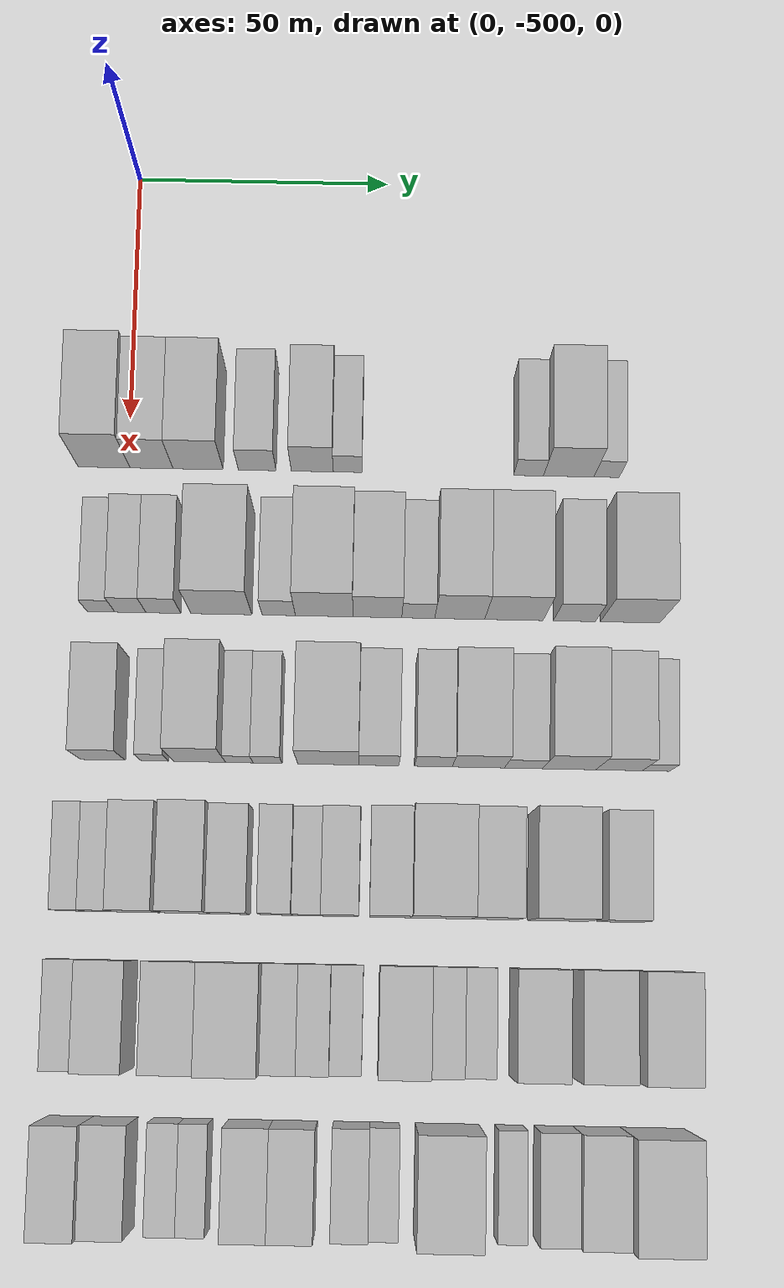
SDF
<sdf version="1.6">
 <world name="default">
  <model name="building_1">
   <static>1</static>
   <pose>50.0000 -504.8726 0 0.000000 0.000000 0.000000</pose>
   <link name="link">
    <pose>0 0 12.00 0 0 0</pose>
    <collision name="collision"><geometry><box><size>20.0000 10.2548 24.0000</size></box></geometry></collision>
    <visual name="visual">
     <cast_shadows>0</cast_shadows>
     <geometry><box><size>20.0000 10.2548 24.0000</size></box></geometry>
     <material>
      <script>
       <uri>model://HANNAS_wall/materials/scripts</uri>
       <uri>model://HANNAS_wall/materials/textures</uri>
       <name>vrc/HANNAS_wall</name>
      </script>
     </material>
    </visual>
   </link>
  </model>
  <model name="building_2">
   <static>1</static>
   <pose>50.0000 -495.4982 0 0.000000 0.000000 0.000000</pose>
   <link name="link">
    <pose>0 0 10.50 0 0 0</pose>
    <collision name="collision"><geometry><box><size>20.0000 8.4941 21.0000</size></box></geometry></collision>
    <visual name="visual">
     <cast_shadows>0</cast_shadows>
     <geometry><box><size>20.0000 8.4941 21.0000</size></box></geometry>
     <material>
      <script>
       <uri>model://HANNAS_wall/materials/scripts</uri>
       <uri>model://HANNAS_wall/materials/textures</uri>
       <name>vrc/HANNAS_wall</name>
      </script>
     </material>
    </visual>
   </link>
  </model>
  <model name="building_3">
   <static>1</static>
   <pose>50.0000 -486.2988 0 0.000000 0.000000 0.000000</pose>
   <link name="link">
    <pose>0 0 10.50 0 0 0</pose>
    <collision name="collision"><geometry><box><size>20.0000 9.9047 21.0000</size></box></geometry></collision>
    <visual name="visual">
     <cast_shadows>0</cast_shadows>
     <geometry><box><size>20.0000 9.9047 21.0000</size></box></geometry>
     <material>
      <script>
       <uri>model://HANNAS_wall/materials/scripts</uri>
       <uri>model://HANNAS_wall/materials/textures</uri>
       <name>vrc/HANNAS_wall</name>
      </script>
     </material>
    </visual>
   </link>
  </model>
  <model name="building_4">
   <static>1</static>
   <pose>50.0000 -474.6262 0 0.000000 0.000000 0.000000</pose>
   <link name="link">
    <pose>0 0 7.50 0 0 0</pose>
    <collision name="collision"><geometry><box><size>20.0000 7.4406 15.0000</size></box></geometry></collision>
    <visual name="visual">
     <cast_shadows>0</cast_shadows>
     <geometry><box><size>20.0000 7.4406 15.0000</size></box></geometry>
     <material>
      <script>
       <uri>model://HANNAS_wall/materials/scripts</uri>
       <uri>model://HANNAS_wall/materials/textures</uri>
       <name>vrc/HANNAS_wall</name>
      </script>
     </material>
    </visual>
   </link>
  </model>
  <model name="building_5">
   <static>1</static>
   <pose>50.0000 -463.7522 0 0.000000 0.000000 0.000000</pose>
   <link name="link">
    <pose>0 0 9.00 0 0 0</pose>
    <collision name="collision"><geometry><box><size>20.0000 8.3073 18.0000</size></box></geometry></collision>
    <visual name="visual">
     <cast_shadows>0</cast_shadows>
     <geometry><box><size>20.0000 8.3073 18.0000</size></box></geometry>
     <material>
      <script>
       <uri>model://HANNAS_wall/materials/scripts</uri>
       <uri>model://HANNAS_wall/materials/textures</uri>
       <name>vrc/HANNAS_wall</name>
      </script>
     </material>
    </visual>
   </link>
  </model>
  <model name="building_6">
   <static>1</static>
   <pose>50.0000 -456.7785 0 0.000000 0.000000 0.000000</pose>
   <link name="link">
    <pose>0 0 6.00 0 0 0</pose>
    <collision name="collision"><geometry><box><size>20.0000 5.6403 12.0000</size></box></geometry></collision>
    <visual name="visual">
     <cast_shadows>0</cast_shadows>
     <geometry><box><size>20.0000 5.6403 12.0000</size></box></geometry>
     <material>
      <script>
       <uri>model://HANNAS_wall/materials/scripts</uri>
       <uri>model://HANNAS_wall/materials/textures</uri>
       <name>vrc/HANNAS_wall</name>
      </script>
     </material>
    </visual>
   </link>
  </model>
  <model name="building_7">
   <static>1</static>
   <pose>50.0000 -421.0872 0 0.000000 0.000000 0.000000</pose>
   <link name="link">
    <pose>0 0 6.00 0 0 0</pose>
    <collision name="collision"><geometry><box><size>20.0000 5.9141 12.0000</size></box></geometry></collision>
    <visual name="visual">
     <cast_shadows>0</cast_shadows>
     <geometry><box><size>20.0000 5.9141 12.0000</size></box></geometry>
     <material>
      <script>
       <uri>model://HANNAS_wall/materials/scripts</uri>
       <uri>model://HANNAS_wall/materials/textures</uri>
       <name>vrc/HANNAS_wall</name>
      </script>
     </material>
    </visual>
   </link>
  </model>
  <model name="building_8">
   <static>1</static>
   <pose>50.0000 -413.1430 0 0.000000 0.000000 0.000000</pose>
   <link name="link">
    <pose>0 0 10.50 0 0 0</pose>
    <collision name="collision"><geometry><box><size>20.0000 9.9742 21.0000</size></box></geometry></collision>
    <visual name="visual">
     <cast_shadows>0</cast_shadows>
     <geometry><box><size>20.0000 9.9742 21.0000</size></box></geometry>
     <material>
      <script>
       <uri>model://HANNAS_wall/materials/scripts</uri>
       <uri>model://HANNAS_wall/materials/textures</uri>
       <name>vrc/HANNAS_wall</name>
      </script>
     </material>
    </visual>
   </link>
  </model>
  <model name="building_9">
   <static>1</static>
   <pose>50.0000 -405.6615 0 0.000000 0.000000 0.000000</pose>
   <link name="link">
    <pose>0 0 6.00 0 0 0</pose>
    <collision name="collision"><geometry><box><size>20.0000 4.9888 12.0000</size></box></geometry></collision>
    <visual name="visual">
     <cast_shadows>0</cast_shadows>
     <geometry><box><size>20.0000 4.9888 12.0000</size></box></geometry>
     <material>
      <script>
       <uri>model://HANNAS_wall/materials/scripts</uri>
       <uri>model://HANNAS_wall/materials/textures</uri>
       <name>vrc/HANNAS_wall</name>
      </script>
     </material>
    </visual>
   </link>
  </model>
  <model name="building_96">
   <static>1</static>
   <pose>79.0000 -504.2856 0 0.000000 0.000000 0.000000</pose>
   <link name="link">
    <pose>0 0 6.00 0 0 0</pose>
    <collision name="collision"><geometry><box><size>20.0000 5.4288 12.0000</size></box></geometry></collision>
    <visual name="visual">
     <cast_shadows>0</cast_shadows>
     <geometry><box><size>20.0000 5.4288 12.0000</size></box></geometry>
     <material>
      <script>
       <uri>model://HANNAS_wall/materials/scripts</uri>
       <uri>model://HANNAS_wall/materials/textures</uri>
       <name>vrc/HANNAS_wall</name>
      </script>
     </material>
    </visual>
   </link>
  </model>
  <model name="building_97">
   <static>1</static>
   <pose>79.0000 -498.5224 0 0.000000 0.000000 0.000000</pose>
   <link name="link">
    <pose>0 0 7.50 0 0 0</pose>
    <collision name="collision"><geometry><box><size>20.0000 6.0975 15.0000</size></box></geometry></collision>
    <visual name="visual">
     <cast_shadows>0</cast_shadows>
     <geometry><box><size>20.0000 6.0975 15.0000</size></box></geometry>
     <material>
      <script>
       <uri>model://HANNAS_wall/materials/scripts</uri>
       <uri>model://HANNAS_wall/materials/textures</uri>
       <name>vrc/HANNAS_wall</name>
      </script>
     </material>
    </visual>
   </link>
  </model>
  <model name="building_98">
   <static>1</static>
   <pose>79.0000 -492.0879 0 0.000000 0.000000 0.000000</pose>
   <link name="link">
    <pose>0 0 7.50 0 0 0</pose>
    <collision name="collision"><geometry><box><size>20.0000 6.7717 15.0000</size></box></geometry></collision>
    <visual name="visual">
     <cast_shadows>0</cast_shadows>
     <geometry><box><size>20.0000 6.7717 15.0000</size></box></geometry>
     <material>
      <script>
       <uri>model://HANNAS_wall/materials/scripts</uri>
       <uri>model://HANNAS_wall/materials/textures</uri>
       <name>vrc/HANNAS_wall</name>
      </script>
     </material>
    </visual>
   </link>
  </model>
  <model name="building_99">
   <static>1</static>
   <pose>79.0000 -480.7575 0 0.000000 0.000000 0.000000</pose>
   <link name="link">
    <pose>0 0 12.00 0 0 0</pose>
    <collision name="collision"><geometry><box><size>20.0000 11.8891 24.0000</size></box></geometry></collision>
    <visual name="visual">
     <cast_shadows>0</cast_shadows>
     <geometry><box><size>20.0000 11.8891 24.0000</size></box></geometry>
     <material>
      <script>
       <uri>model://HANNAS_wall/materials/scripts</uri>
       <uri>model://HANNAS_wall/materials/textures</uri>
       <name>vrc/HANNAS_wall</name>
      </script>
     </material>
    </visual>
   </link>
  </model>
  <model name="building_100">
   <static>1</static>
   <pose>79.0000 -469.5811 0 0.000000 0.000000 0.000000</pose>
   <link name="link">
    <pose>0 0 7.50 0 0 0</pose>
    <collision name="collision"><geometry><box><size>20.0000 6.4636 15.0000</size></box></geometry></collision>
    <visual name="visual">
     <cast_shadows>0</cast_shadows>
     <geometry><box><size>20.0000 6.4636 15.0000</size></box></geometry>
     <material>
      <script>
       <uri>model://HANNAS_wall/materials/scripts</uri>
       <uri>model://HANNAS_wall/materials/textures</uri>
       <name>vrc/HANNAS_wall</name>
      </script>
     </material>
    </visual>
   </link>
  </model>
  <model name="building_101">
   <static>1</static>
   <pose>79.0000 -460.7038 0 0.000000 0.000000 0.000000</pose>
   <link name="link">
    <pose>0 0 12.00 0 0 0</pose>
    <collision name="collision"><geometry><box><size>20.0000 11.2910 24.0000</size></box></geometry></collision>
    <visual name="visual">
     <cast_shadows>0</cast_shadows>
     <geometry><box><size>20.0000 11.2910 24.0000</size></box></geometry>
     <material>
      <script>
       <uri>model://HANNAS_wall/materials/scripts</uri>
       <uri>model://HANNAS_wall/materials/textures</uri>
       <name>vrc/HANNAS_wall</name>
      </script>
     </material>
    </visual>
   </link>
  </model>
  <model name="building_102">
   <static>1</static>
   <pose>79.0000 -450.3324 0 0.000000 0.000000 0.000000</pose>
   <link name="link">
    <pose>0 0 10.50 0 0 0</pose>
    <collision name="collision"><geometry><box><size>20.0000 9.4518 21.0000</size></box></geometry></collision>
    <visual name="visual">
     <cast_shadows>0</cast_shadows>
     <geometry><box><size>20.0000 9.4518 21.0000</size></box></geometry>
     <material>
      <script>
       <uri>model://HANNAS_wall/materials/scripts</uri>
       <uri>model://HANNAS_wall/materials/textures</uri>
       <name>vrc/HANNAS_wall</name>
      </script>
     </material>
    </visual>
   </link>
  </model>
  <model name="building_103">
   <static>1</static>
   <pose>79.0000 -442.3869 0 0.000000 0.000000 0.000000</pose>
   <link name="link">
    <pose>0 0 7.50 0 0 0</pose>
    <collision name="collision"><geometry><box><size>20.0000 6.4391 15.0000</size></box></geometry></collision>
    <visual name="visual">
     <cast_shadows>0</cast_shadows>
     <geometry><box><size>20.0000 6.4391 15.0000</size></box></geometry>
     <material>
      <script>
       <uri>model://HANNAS_wall/materials/scripts</uri>
       <uri>model://HANNAS_wall/materials/textures</uri>
       <name>vrc/HANNAS_wall</name>
      </script>
     </material>
    </visual>
   </link>
  </model>
  <model name="building_104">
   <static>1</static>
   <pose>79.0000 -434.2957 0 0.000000 0.000000 0.000000</pose>
   <link name="link">
    <pose>0 0 12.00 0 0 0</pose>
    <collision name="collision"><geometry><box><size>20.0000 9.7432 24.0000</size></box></geometry></collision>
    <visual name="visual">
     <cast_shadows>0</cast_shadows>
     <geometry><box><size>20.0000 9.7432 24.0000</size></box></geometry>
     <material>
      <script>
       <uri>model://HANNAS_wall/materials/scripts</uri>
       <uri>model://HANNAS_wall/materials/textures</uri>
       <name>vrc/HANNAS_wall</name>
      </script>
     </material>
    </visual>
   </link>
  </model>
  <model name="building_105">
   <static>1</static>
   <pose>79.0000 -423.7274 0 0.000000 0.000000 0.000000</pose>
   <link name="link">
    <pose>0 0 12.00 0 0 0</pose>
    <collision name="collision"><geometry><box><size>20.0000 11.3936 24.0000</size></box></geometry></collision>
    <visual name="visual">
     <cast_shadows>0</cast_shadows>
     <geometry><box><size>20.0000 11.3936 24.0000</size></box></geometry>
     <material>
      <script>
       <uri>model://HANNAS_wall/materials/scripts</uri>
       <uri>model://HANNAS_wall/materials/textures</uri>
       <name>vrc/HANNAS_wall</name>
      </script>
     </material>
    </visual>
   </link>
  </model>
  <model name="building_106">
   <static>1</static>
   <pose>79.0000 -411.9293 0 0.000000 0.000000 0.000000</pose>
   <link name="link">
    <pose>0 0 9.00 0 0 0</pose>
    <collision name="collision"><geometry><box><size>20.0000 8.2027 18.0000</size></box></geometry></collision>
    <visual name="visual">
     <cast_shadows>0</cast_shadows>
     <geometry><box><size>20.0000 8.2027 18.0000</size></box></geometry>
     <material>
      <script>
       <uri>model://HANNAS_wall/materials/scripts</uri>
       <uri>model://HANNAS_wall/materials/textures</uri>
       <name>vrc/HANNAS_wall</name>
      </script>
     </material>
    </visual>
   </link>
  </model>
  <model name="building_107">
   <static>1</static>
   <pose>79.0000 -401.0290 0 0.000000 0.000000 0.000000</pose>
   <link name="link">
    <pose>0 0 12.00 0 0 0</pose>
    <collision name="collision"><geometry><box><size>20.0000 11.5978 24.0000</size></box></geometry></collision>
    <visual name="visual">
     <cast_shadows>0</cast_shadows>
     <geometry><box><size>20.0000 11.5978 24.0000</size></box></geometry>
     <material>
      <script>
       <uri>model://HANNAS_wall/materials/scripts</uri>
       <uri>model://HANNAS_wall/materials/textures</uri>
       <name>vrc/HANNAS_wall</name>
      </script>
     </material>
    </visual>
   </link>
  </model>
  <model name="building_212">
   <static>1</static>
   <pose>108.0000 -502.6746 0 0.000000 0.000000 0.000000</pose>
   <link name="link">
    <pose>0 0 9.00 0 0 0</pose>
    <collision name="collision"><geometry><box><size>20.0000 8.6509 18.0000</size></box></geometry></collision>
    <visual name="visual">
     <cast_shadows>0</cast_shadows>
     <geometry><box><size>20.0000 8.6509 18.0000</size></box></geometry>
     <material>
      <script>
       <uri>model://HANNAS_wall/materials/scripts</uri>
       <uri>model://HANNAS_wall/materials/textures</uri>
       <name>vrc/HANNAS_wall</name>
      </script>
     </material>
    </visual>
   </link>
  </model>
  <model name="building_213">
   <static>1</static>
   <pose>108.0000 -492.6937 0 0.000000 0.000000 0.000000</pose>
   <link name="link">
    <pose>0 0 6.00 0 0 0</pose>
    <collision name="collision"><geometry><box><size>20.0000 5.3109 12.0000</size></box></geometry></collision>
    <visual name="visual">
     <cast_shadows>0</cast_shadows>
     <geometry><box><size>20.0000 5.3109 12.0000</size></box></geometry>
     <material>
      <script>
       <uri>model://HANNAS_wall/materials/scripts</uri>
       <uri>model://HANNAS_wall/materials/textures</uri>
       <name>vrc/HANNAS_wall</name>
      </script>
     </material>
    </visual>
   </link>
  </model>
  <model name="building_214">
   <static>1</static>
   <pose>108.0000 -484.0198 0 0.000000 0.000000 0.000000</pose>
   <link name="link">
    <pose>0 0 12.00 0 0 0</pose>
    <collision name="collision"><geometry><box><size>20.0000 10.0369 24.0000</size></box></geometry></collision>
    <visual name="visual">
     <cast_shadows>0</cast_shadows>
     <geometry><box><size>20.0000 10.0369 24.0000</size></box></geometry>
     <material>
      <script>
       <uri>model://HANNAS_wall/materials/scripts</uri>
       <uri>model://HANNAS_wall/materials/textures</uri>
       <name>vrc/HANNAS_wall</name>
      </script>
     </material>
    </visual>
   </link>
  </model>
  <model name="building_215">
   <static>1</static>
   <pose>108.0000 -476.3564 0 0.000000 0.000000 0.000000</pose>
   <link name="link">
    <pose>0 0 6.00 0 0 0</pose>
    <collision name="collision"><geometry><box><size>20.0000 5.2899 12.0000</size></box></geometry></collision>
    <visual name="visual">
     <cast_shadows>0</cast_shadows>
     <geometry><box><size>20.0000 5.2899 12.0000</size></box></geometry>
     <material>
      <script>
       <uri>model://HANNAS_wall/materials/scripts</uri>
       <uri>model://HANNAS_wall/materials/textures</uri>
       <name>vrc/HANNAS_wall</name>
      </script>
     </material>
    </visual>
   </link>
  </model>
  <model name="building_216">
   <static>1</static>
   <pose>108.0000 -470.9179 0 0.000000 0.000000 0.000000</pose>
   <link name="link">
    <pose>0 0 6.00 0 0 0</pose>
    <collision name="collision"><geometry><box><size>20.0000 5.5871 12.0000</size></box></geometry></collision>
    <visual name="visual">
     <cast_shadows>0</cast_shadows>
     <geometry><box><size>20.0000 5.5871 12.0000</size></box></geometry>
     <material>
      <script>
       <uri>model://HANNAS_wall/materials/scripts</uri>
       <uri>model://HANNAS_wall/materials/textures</uri>
       <name>vrc/HANNAS_wall</name>
      </script>
     </material>
    </visual>
   </link>
  </model>
  <model name="building_217">
   <static>1</static>
   <pose>108.0000 -459.2125 0 0.000000 0.000000 0.000000</pose>
   <link name="link">
    <pose>0 0 12.00 0 0 0</pose>
    <collision name="collision"><geometry><box><size>20.0000 11.8238 24.0000</size></box></geometry></collision>
    <visual name="visual">
     <cast_shadows>0</cast_shadows>
     <geometry><box><size>20.0000 11.8238 24.0000</size></box></geometry>
     <material>
      <script>
       <uri>model://HANNAS_wall/materials/scripts</uri>
       <uri>model://HANNAS_wall/materials/textures</uri>
       <name>vrc/HANNAS_wall</name>
      </script>
     </material>
    </visual>
   </link>
  </model>
  <model name="building_218">
   <static>1</static>
   <pose>108.0000 -449.4734 0 0.000000 0.000000 0.000000</pose>
   <link name="link">
    <pose>0 0 9.00 0 0 0</pose>
    <collision name="collision"><geometry><box><size>20.0000 7.6546 18.0000</size></box></geometry></collision>
    <visual name="visual">
     <cast_shadows>0</cast_shadows>
     <geometry><box><size>20.0000 7.6546 18.0000</size></box></geometry>
     <material>
      <script>
       <uri>model://HANNAS_wall/materials/scripts</uri>
       <uri>model://HANNAS_wall/materials/textures</uri>
       <name>vrc/HANNAS_wall</name>
      </script>
     </material>
    </visual>
   </link>
  </model>
  <model name="building_219">
   <static>1</static>
   <pose>108.0000 -439.0254 0 0.000000 0.000000 0.000000</pose>
   <link name="link">
    <pose>0 0 9.00 0 0 0</pose>
    <collision name="collision"><geometry><box><size>20.0000 7.2413 18.0000</size></box></geometry></collision>
    <visual name="visual">
     <cast_shadows>0</cast_shadows>
     <geometry><box><size>20.0000 7.2413 18.0000</size></box></geometry>
     <material>
      <script>
       <uri>model://HANNAS_wall/materials/scripts</uri>
       <uri>model://HANNAS_wall/materials/textures</uri>
       <name>vrc/HANNAS_wall</name>
      </script>
     </material>
    </visual>
   </link>
  </model>
  <model name="building_220">
   <static>1</static>
   <pose>108.0000 -430.3563 0 0.000000 0.000000 0.000000</pose>
   <link name="link">
    <pose>0 0 10.50 0 0 0</pose>
    <collision name="collision"><geometry><box><size>20.0000 10.0970 21.0000</size></box></geometry></collision>
    <visual name="visual">
     <cast_shadows>0</cast_shadows>
     <geometry><box><size>20.0000 10.0970 21.0000</size></box></geometry>
     <material>
      <script>
       <uri>model://HANNAS_wall/materials/scripts</uri>
       <uri>model://HANNAS_wall/materials/textures</uri>
       <name>vrc/HANNAS_wall</name>
      </script>
     </material>
    </visual>
   </link>
  </model>
  <model name="building_221">
   <static>1</static>
   <pose>108.0000 -421.6366 0 0.000000 0.000000 0.000000</pose>
   <link name="link">
    <pose>0 0 7.50 0 0 0</pose>
    <collision name="collision"><geometry><box><size>20.0000 7.3423 15.0000</size></box></geometry></collision>
    <visual name="visual">
     <cast_shadows>0</cast_shadows>
     <geometry><box><size>20.0000 7.3423 15.0000</size></box></geometry>
     <material>
      <script>
       <uri>model://HANNAS_wall/materials/scripts</uri>
       <uri>model://HANNAS_wall/materials/textures</uri>
       <name>vrc/HANNAS_wall</name>
      </script>
     </material>
    </visual>
   </link>
  </model>
  <model name="building_222">
   <static>1</static>
   <pose>108.0000 -412.8194 0 0.000000 0.000000 0.000000</pose>
   <link name="link">
    <pose>0 0 12.00 0 0 0</pose>
    <collision name="collision"><geometry><box><size>20.0000 10.2921 24.0000</size></box></geometry></collision>
    <visual name="visual">
     <cast_shadows>0</cast_shadows>
     <geometry><box><size>20.0000 10.2921 24.0000</size></box></geometry>
     <material>
      <script>
       <uri>model://HANNAS_wall/materials/scripts</uri>
       <uri>model://HANNAS_wall/materials/textures</uri>
       <name>vrc/HANNAS_wall</name>
      </script>
     </material>
    </visual>
   </link>
  </model>
  <model name="building_223">
   <static>1</static>
   <pose>108.0000 -403.1983 0 0.000000 0.000000 0.000000</pose>
   <link name="link">
    <pose>0 0 10.50 0 0 0</pose>
    <collision name="collision"><geometry><box><size>20.0000 8.9501 21.0000</size></box></geometry></collision>
    <visual name="visual">
     <cast_shadows>0</cast_shadows>
     <geometry><box><size>20.0000 8.9501 21.0000</size></box></geometry>
     <material>
      <script>
       <uri>model://HANNAS_wall/materials/scripts</uri>
       <uri>model://HANNAS_wall/materials/textures</uri>
       <name>vrc/HANNAS_wall</name>
      </script>
     </material>
    </visual>
   </link>
  </model>
  <model name="building_224">
   <static>1</static>
   <pose>108.0000 -396.1077 0 0.000000 0.000000 0.000000</pose>
   <link name="link">
    <pose>0 0 6.00 0 0 0</pose>
    <collision name="collision"><geometry><box><size>20.0000 5.2312 12.0000</size></box></geometry></collision>
    <visual name="visual">
     <cast_shadows>0</cast_shadows>
     <geometry><box><size>20.0000 5.2312 12.0000</size></box></geometry>
     <material>
      <script>
       <uri>model://HANNAS_wall/materials/scripts</uri>
       <uri>model://HANNAS_wall/materials/textures</uri>
       <name>vrc/HANNAS_wall</name>
      </script>
     </material>
    </visual>
   </link>
  </model>
  <model name="building_322">
   <static>1</static>
   <pose>137.0000 -507.4300 0 0.000000 0.000000 0.000000</pose>
   <link name="link">
    <pose>0 0 6.00 0 0 0</pose>
    <collision name="collision"><geometry><box><size>20.0000 5.1401 12.0000</size></box></geometry></collision>
    <visual name="visual">
     <cast_shadows>0</cast_shadows>
     <geometry><box><size>20.0000 5.1401 12.0000</size></box></geometry>
     <material>
      <script>
       <uri>model://HANNAS_wall/materials/scripts</uri>
       <uri>model://HANNAS_wall/materials/textures</uri>
       <name>vrc/HANNAS_wall</name>
      </script>
     </material>
    </visual>
   </link>
  </model>
  <model name="building_323">
   <static>1</static>
   <pose>137.0000 -501.9256 0 0.000000 0.000000 0.000000</pose>
   <link name="link">
    <pose>0 0 6.00 0 0 0</pose>
    <collision name="collision"><geometry><box><size>20.0000 5.8686 12.0000</size></box></geometry></collision>
    <visual name="visual">
     <cast_shadows>0</cast_shadows>
     <geometry><box><size>20.0000 5.8686 12.0000</size></box></geometry>
     <material>
      <script>
       <uri>model://HANNAS_wall/materials/scripts</uri>
       <uri>model://HANNAS_wall/materials/textures</uri>
       <name>vrc/HANNAS_wall</name>
      </script>
     </material>
    </visual>
   </link>
  </model>
  <model name="building_324">
   <static>1</static>
   <pose>137.0000 -494.7883 0 0.000000 0.000000 0.000000</pose>
   <link name="link">
    <pose>0 0 9.00 0 0 0</pose>
    <collision name="collision"><geometry><box><size>20.0000 8.4061 18.0000</size></box></geometry></collision>
    <visual name="visual">
     <cast_shadows>0</cast_shadows>
     <geometry><box><size>20.0000 8.4061 18.0000</size></box></geometry>
     <material>
      <script>
       <uri>model://HANNAS_wall/materials/scripts</uri>
       <uri>model://HANNAS_wall/materials/textures</uri>
       <name>vrc/HANNAS_wall</name>
      </script>
     </material>
    </visual>
   </link>
  </model>
  <model name="building_325">
   <static>1</static>
   <pose>137.0000 -485.2463 0 0.000000 0.000000 0.000000</pose>
   <link name="link">
    <pose>0 0 10.50 0 0 0</pose>
    <collision name="collision"><geometry><box><size>20.0000 8.6780 21.0000</size></box></geometry></collision>
    <visual name="visual">
     <cast_shadows>0</cast_shadows>
     <geometry><box><size>20.0000 8.6780 21.0000</size></box></geometry>
     <material>
      <script>
       <uri>model://HANNAS_wall/materials/scripts</uri>
       <uri>model://HANNAS_wall/materials/textures</uri>
       <name>vrc/HANNAS_wall</name>
      </script>
     </material>
    </visual>
   </link>
  </model>
  <model name="building_326">
   <static>1</static>
   <pose>137.0000 -477.1633 0 0.000000 0.000000 0.000000</pose>
   <link name="link">
    <pose>0 0 7.50 0 0 0</pose>
    <collision name="collision"><geometry><box><size>20.0000 7.4880 15.0000</size></box></geometry></collision>
    <visual name="visual">
     <cast_shadows>0</cast_shadows>
     <geometry><box><size>20.0000 7.4880 15.0000</size></box></geometry>
     <material>
      <script>
       <uri>model://HANNAS_wall/materials/scripts</uri>
       <uri>model://HANNAS_wall/materials/textures</uri>
       <name>vrc/HANNAS_wall</name>
      </script>
     </material>
    </visual>
   </link>
  </model>
  <model name="building_327">
   <static>1</static>
   <pose>137.0000 -468.3188 0 0.000000 0.000000 0.000000</pose>
   <link name="link">
    <pose>0 0 7.50 0 0 0</pose>
    <collision name="collision"><geometry><box><size>20.0000 6.2010 15.0000</size></box></geometry></collision>
    <visual name="visual">
     <cast_shadows>0</cast_shadows>
     <geometry><box><size>20.0000 6.2010 15.0000</size></box></geometry>
     <material>
      <script>
       <uri>model://HANNAS_wall/materials/scripts</uri>
       <uri>model://HANNAS_wall/materials/textures</uri>
       <name>vrc/HANNAS_wall</name>
      </script>
     </material>
    </visual>
   </link>
  </model>
  <model name="building_328">
   <static>1</static>
   <pose>137.0000 -462.4796 0 0.000000 0.000000 0.000000</pose>
   <link name="link">
    <pose>0 0 6.00 0 0 0</pose>
    <collision name="collision"><geometry><box><size>20.0000 5.4775 12.0000</size></box></geometry></collision>
    <visual name="visual">
     <cast_shadows>0</cast_shadows>
     <geometry><box><size>20.0000 5.4775 12.0000</size></box></geometry>
     <material>
      <script>
       <uri>model://HANNAS_wall/materials/scripts</uri>
       <uri>model://HANNAS_wall/materials/textures</uri>
       <name>vrc/HANNAS_wall</name>
      </script>
     </material>
    </visual>
   </link>
  </model>
  <model name="building_329">
   <static>1</static>
   <pose>137.0000 -456.2377 0 0.000000 0.000000 0.000000</pose>
   <link name="link">
    <pose>0 0 7.50 0 0 0</pose>
    <collision name="collision"><geometry><box><size>20.0000 7.0062 15.0000</size></box></geometry></collision>
    <visual name="visual">
     <cast_shadows>0</cast_shadows>
     <geometry><box><size>20.0000 7.0062 15.0000</size></box></geometry>
     <material>
      <script>
       <uri>model://HANNAS_wall/materials/scripts</uri>
       <uri>model://HANNAS_wall/materials/textures</uri>
       <name>vrc/HANNAS_wall</name>
      </script>
     </material>
    </visual>
   </link>
  </model>
  <model name="building_330">
   <static>1</static>
   <pose>137.0000 -446.8250 0 0.000000 0.000000 0.000000</pose>
   <link name="link">
    <pose>0 0 9.00 0 0 0</pose>
    <collision name="collision"><geometry><box><size>20.0000 7.8192 18.0000</size></box></geometry></collision>
    <visual name="visual">
     <cast_shadows>0</cast_shadows>
     <geometry><box><size>20.0000 7.8192 18.0000</size></box></geometry>
     <material>
      <script>
       <uri>model://HANNAS_wall/materials/scripts</uri>
       <uri>model://HANNAS_wall/materials/textures</uri>
       <name>vrc/HANNAS_wall</name>
      </script>
     </material>
    </visual>
   </link>
  </model>
  <model name="building_331">
   <static>1</static>
   <pose>137.0000 -437.2051 0 0.000000 0.000000 0.000000</pose>
   <link name="link">
    <pose>0 0 12.00 0 0 0</pose>
    <collision name="collision"><geometry><box><size>20.0000 11.4207 24.0000</size></box></geometry></collision>
    <visual name="visual">
     <cast_shadows>0</cast_shadows>
     <geometry><box><size>20.0000 11.4207 24.0000</size></box></geometry>
     <material>
      <script>
       <uri>model://HANNAS_wall/materials/scripts</uri>
       <uri>model://HANNAS_wall/materials/textures</uri>
       <name>vrc/HANNAS_wall</name>
      </script>
     </material>
    </visual>
   </link>
  </model>
  <model name="building_332">
   <static>1</static>
   <pose>137.0000 -427.0949 0 0.000000 0.000000 0.000000</pose>
   <link name="link">
    <pose>0 0 10.50 0 0 0</pose>
    <collision name="collision"><geometry><box><size>20.0000 8.7996 21.0000</size></box></geometry></collision>
    <visual name="visual">
     <cast_shadows>0</cast_shadows>
     <geometry><box><size>20.0000 8.7996 21.0000</size></box></geometry>
     <material>
      <script>
       <uri>model://HANNAS_wall/materials/scripts</uri>
       <uri>model://HANNAS_wall/materials/textures</uri>
       <name>vrc/HANNAS_wall</name>
      </script>
     </material>
    </visual>
   </link>
  </model>
  <model name="building_333">
   <static>1</static>
   <pose>137.0000 -415.0547 0 0.000000 0.000000 0.000000</pose>
   <link name="link">
    <pose>0 0 12.00 0 0 0</pose>
    <collision name="collision"><geometry><box><size>20.0000 11.2808 24.0000</size></box></geometry></collision>
    <visual name="visual">
     <cast_shadows>0</cast_shadows>
     <geometry><box><size>20.0000 11.2808 24.0000</size></box></geometry>
     <material>
      <script>
       <uri>model://HANNAS_wall/materials/scripts</uri>
       <uri>model://HANNAS_wall/materials/textures</uri>
       <name>vrc/HANNAS_wall</name>
      </script>
     </material>
    </visual>
   </link>
  </model>
  <model name="building_334">
   <static>1</static>
   <pose>137.0000 -403.3989 0 0.000000 0.000000 0.000000</pose>
   <link name="link">
    <pose>0 0 9.00 0 0 0</pose>
    <collision name="collision"><geometry><box><size>20.0000 8.0308 18.0000</size></box></geometry></collision>
    <visual name="visual">
     <cast_shadows>0</cast_shadows>
     <geometry><box><size>20.0000 8.0308 18.0000</size></box></geometry>
     <material>
      <script>
       <uri>model://HANNAS_wall/materials/scripts</uri>
       <uri>model://HANNAS_wall/materials/textures</uri>
       <name>vrc/HANNAS_wall</name>
      </script>
     </material>
    </visual>
   </link>
  </model>
  <model name="building_437">
   <static>1</static>
   <pose>166.0000 -506.7772 0 0.000000 0.000000 0.000000</pose>
   <link name="link">
    <pose>0 0 7.50 0 0 0</pose>
    <collision name="collision"><geometry><box><size>20.0000 6.4455 15.0000</size></box></geometry></collision>
    <visual name="visual">
     <cast_shadows>0</cast_shadows>
     <geometry><box><size>20.0000 6.4455 15.0000</size></box></geometry>
     <material>
      <script>
       <uri>model://HANNAS_wall/materials/scripts</uri>
       <uri>model://HANNAS_wall/materials/textures</uri>
       <name>vrc/HANNAS_wall</name>
      </script>
     </material>
    </visual>
   </link>
  </model>
  <model name="building_438">
   <static>1</static>
   <pose>166.0000 -499.0122 0 0.000000 0.000000 0.000000</pose>
   <link name="link">
    <pose>0 0 10.50 0 0 0</pose>
    <collision name="collision"><geometry><box><size>20.0000 9.0845 21.0000</size></box></geometry></collision>
    <visual name="visual">
     <cast_shadows>0</cast_shadows>
     <geometry><box><size>20.0000 9.0845 21.0000</size></box></geometry>
     <material>
      <script>
       <uri>model://HANNAS_wall/materials/scripts</uri>
       <uri>model://HANNAS_wall/materials/textures</uri>
       <name>vrc/HANNAS_wall</name>
      </script>
     </material>
    </visual>
   </link>
  </model>
  <model name="building_439">
   <static>1</static>
   <pose>166.0000 -486.4685 0 0.000000 0.000000 0.000000</pose>
   <link name="link">
    <pose>0 0 10.50 0 0 0</pose>
    <collision name="collision"><geometry><box><size>20.0000 10.0028 21.0000</size></box></geometry></collision>
    <visual name="visual">
     <cast_shadows>0</cast_shadows>
     <geometry><box><size>20.0000 10.0028 21.0000</size></box></geometry>
     <material>
      <script>
       <uri>model://HANNAS_wall/materials/scripts</uri>
       <uri>model://HANNAS_wall/materials/textures</uri>
       <name>vrc/HANNAS_wall</name>
      </script>
     </material>
    </visual>
   </link>
  </model>
  <model name="building_440">
   <static>1</static>
   <pose>166.0000 -475.8241 0 0.000000 0.000000 0.000000</pose>
   <link name="link">
    <pose>0 0 12.00 0 0 0</pose>
    <collision name="collision"><geometry><box><size>20.0000 11.2860 24.0000</size></box></geometry></collision>
    <visual name="visual">
     <cast_shadows>0</cast_shadows>
     <geometry><box><size>20.0000 11.2860 24.0000</size></box></geometry>
     <material>
      <script>
       <uri>model://HANNAS_wall/materials/scripts</uri>
       <uri>model://HANNAS_wall/materials/textures</uri>
       <name>vrc/HANNAS_wall</name>
      </script>
     </material>
    </visual>
   </link>
  </model>
  <model name="building_441">
   <static>1</static>
   <pose>166.0000 -466.8923 0 0.000000 0.000000 0.000000</pose>
   <link name="link">
    <pose>0 0 7.50 0 0 0</pose>
    <collision name="collision"><geometry><box><size>20.0000 6.5774 15.0000</size></box></geometry></collision>
    <visual name="visual">
     <cast_shadows>0</cast_shadows>
     <geometry><box><size>20.0000 6.5774 15.0000</size></box></geometry>
     <material>
      <script>
       <uri>model://HANNAS_wall/materials/scripts</uri>
       <uri>model://HANNAS_wall/materials/textures</uri>
       <name>vrc/HANNAS_wall</name>
      </script>
     </material>
    </visual>
   </link>
  </model>
  <model name="building_442">
   <static>1</static>
   <pose>166.0000 -460.5857 0 0.000000 0.000000 0.000000</pose>
   <link name="link">
    <pose>0 0 7.50 0 0 0</pose>
    <collision name="collision"><geometry><box><size>20.0000 6.0359 15.0000</size></box></geometry></collision>
    <visual name="visual">
     <cast_shadows>0</cast_shadows>
     <geometry><box><size>20.0000 6.0359 15.0000</size></box></geometry>
     <material>
      <script>
       <uri>model://HANNAS_wall/materials/scripts</uri>
       <uri>model://HANNAS_wall/materials/textures</uri>
       <name>vrc/HANNAS_wall</name>
      </script>
     </material>
    </visual>
   </link>
  </model>
  <model name="building_443">
   <static>1</static>
   <pose>166.0000 -454.6080 0 0.000000 0.000000 0.000000</pose>
   <link name="link">
    <pose>0 0 6.00 0 0 0</pose>
    <collision name="collision"><geometry><box><size>20.0000 5.9194 12.0000</size></box></geometry></collision>
    <visual name="visual">
     <cast_shadows>0</cast_shadows>
     <geometry><box><size>20.0000 5.9194 12.0000</size></box></geometry>
     <material>
      <script>
       <uri>model://HANNAS_wall/materials/scripts</uri>
       <uri>model://HANNAS_wall/materials/textures</uri>
       <name>vrc/HANNAS_wall</name>
      </script>
     </material>
    </visual>
   </link>
  </model>
  <model name="building_444">
   <static>1</static>
   <pose>166.0000 -443.8889 0 0.000000 0.000000 0.000000</pose>
   <link name="link">
    <pose>0 0 10.50 0 0 0</pose>
    <collision name="collision"><geometry><box><size>20.0000 9.5188 21.0000</size></box></geometry></collision>
    <visual name="visual">
     <cast_shadows>0</cast_shadows>
     <geometry><box><size>20.0000 9.5188 21.0000</size></box></geometry>
     <material>
      <script>
       <uri>model://HANNAS_wall/materials/scripts</uri>
       <uri>model://HANNAS_wall/materials/textures</uri>
       <name>vrc/HANNAS_wall</name>
      </script>
     </material>
    </visual>
   </link>
  </model>
  <model name="building_445">
   <static>1</static>
   <pose>166.0000 -436.0107 0 0.000000 0.000000 0.000000</pose>
   <link name="link">
    <pose>0 0 7.50 0 0 0</pose>
    <collision name="collision"><geometry><box><size>20.0000 6.2376 15.0000</size></box></geometry></collision>
    <visual name="visual">
     <cast_shadows>0</cast_shadows>
     <geometry><box><size>20.0000 6.2376 15.0000</size></box></geometry>
     <material>
      <script>
       <uri>model://HANNAS_wall/materials/scripts</uri>
       <uri>model://HANNAS_wall/materials/textures</uri>
       <name>vrc/HANNAS_wall</name>
      </script>
     </material>
    </visual>
   </link>
  </model>
  <model name="building_446">
   <static>1</static>
   <pose>166.0000 -429.9337 0 0.000000 0.000000 0.000000</pose>
   <link name="link">
    <pose>0 0 6.00 0 0 0</pose>
    <collision name="collision"><geometry><box><size>20.0000 5.9164 12.0000</size></box></geometry></collision>
    <visual name="visual">
     <cast_shadows>0</cast_shadows>
     <geometry><box><size>20.0000 5.9164 12.0000</size></box></geometry>
     <material>
      <script>
       <uri>model://HANNAS_wall/materials/scripts</uri>
       <uri>model://HANNAS_wall/materials/textures</uri>
       <name>vrc/HANNAS_wall</name>
      </script>
     </material>
    </visual>
   </link>
  </model>
  <model name="building_447">
   <static>1</static>
   <pose>166.0000 -419.1223 0 0.000000 0.000000 0.000000</pose>
   <link name="link">
    <pose>0 0 10.50 0 0 0</pose>
    <collision name="collision"><geometry><box><size>20.0000 9.7062 21.0000</size></box></geometry></collision>
    <visual name="visual">
     <cast_shadows>0</cast_shadows>
     <geometry><box><size>20.0000 9.7062 21.0000</size></box></geometry>
     <material>
      <script>
       <uri>model://HANNAS_wall/materials/scripts</uri>
       <uri>model://HANNAS_wall/materials/textures</uri>
       <name>vrc/HANNAS_wall</name>
      </script>
     </material>
    </visual>
   </link>
  </model>
  <model name="building_448">
   <static>1</static>
   <pose>166.0000 -407.3166 0 0.000000 0.000000 0.000000</pose>
   <link name="link">
    <pose>0 0 10.50 0 0 0</pose>
    <collision name="collision"><geometry><box><size>20.0000 9.9053 21.0000</size></box></geometry></collision>
    <visual name="visual">
     <cast_shadows>0</cast_shadows>
     <geometry><box><size>20.0000 9.9053 21.0000</size></box></geometry>
     <material>
      <script>
       <uri>model://HANNAS_wall/materials/scripts</uri>
       <uri>model://HANNAS_wall/materials/textures</uri>
       <name>vrc/HANNAS_wall</name>
      </script>
     </material>
    </visual>
   </link>
  </model>
  <model name="building_449">
   <static>1</static>
   <pose>166.0000 -396.3011 0 0.000000 0.000000 0.000000</pose>
   <link name="link">
    <pose>0 0 12.00 0 0 0</pose>
    <collision name="collision"><geometry><box><size>20.0000 10.1259 24.0000</size></box></geometry></collision>
    <visual name="visual">
     <cast_shadows>0</cast_shadows>
     <geometry><box><size>20.0000 10.1259 24.0000</size></box></geometry>
     <material>
      <script>
       <uri>model://HANNAS_wall/materials/scripts</uri>
       <uri>model://HANNAS_wall/materials/textures</uri>
       <name>vrc/HANNAS_wall</name>
      </script>
     </material>
    </visual>
   </link>
  </model>
  <model name="building_552">
   <static>1</static>
   <pose>195.0000 -505.7945 0 0.000000 0.000000 0.000000</pose>
   <link name="link">
    <pose>0 0 10.50 0 0 0</pose>
    <collision name="collision"><geometry><box><size>20.0000 8.4110 21.0000</size></box></geometry></collision>
    <visual name="visual">
     <cast_shadows>0</cast_shadows>
     <geometry><box><size>20.0000 8.4110 21.0000</size></box></geometry>
     <material>
      <script>
       <uri>model://HANNAS_wall/materials/scripts</uri>
       <uri>model://HANNAS_wall/materials/textures</uri>
       <name>vrc/HANNAS_wall</name>
      </script>
     </material>
    </visual>
   </link>
  </model>
  <model name="building_553">
   <static>1</static>
   <pose>195.0000 -497.4490 0 0.000000 0.000000 0.000000</pose>
   <link name="link">
    <pose>0 0 9.00 0 0 0</pose>
    <collision name="collision"><geometry><box><size>20.0000 8.2799 18.0000</size></box></geometry></collision>
    <visual name="visual">
     <cast_shadows>0</cast_shadows>
     <geometry><box><size>20.0000 8.2799 18.0000</size></box></geometry>
     <material>
      <script>
       <uri>model://HANNAS_wall/materials/scripts</uri>
       <uri>model://HANNAS_wall/materials/textures</uri>
       <name>vrc/HANNAS_wall</name>
      </script>
     </material>
    </visual>
   </link>
  </model>
  <model name="building_554">
   <static>1</static>
   <pose>195.0000 -487.4587 0 0.000000 0.000000 0.000000</pose>
   <link name="link">
    <pose>0 0 6.00 0 0 0</pose>
    <collision name="collision"><geometry><box><size>20.0000 5.7007 12.0000</size></box></geometry></collision>
    <visual name="visual">
     <cast_shadows>0</cast_shadows>
     <geometry><box><size>20.0000 5.7007 12.0000</size></box></geometry>
     <material>
      <script>
       <uri>model://HANNAS_wall/materials/scripts</uri>
       <uri>model://HANNAS_wall/materials/textures</uri>
       <name>vrc/HANNAS_wall</name>
      </script>
     </material>
    </visual>
   </link>
  </model>
  <model name="building_555">
   <static>1</static>
   <pose>195.0000 -481.9424 0 0.000000 0.000000 0.000000</pose>
   <link name="link">
    <pose>0 0 6.00 0 0 0</pose>
    <collision name="collision"><geometry><box><size>20.0000 5.3320 12.0000</size></box></geometry></collision>
    <visual name="visual">
     <cast_shadows>0</cast_shadows>
     <geometry><box><size>20.0000 5.3320 12.0000</size></box></geometry>
     <material>
      <script>
       <uri>model://HANNAS_wall/materials/scripts</uri>
       <uri>model://HANNAS_wall/materials/textures</uri>
       <name>vrc/HANNAS_wall</name>
      </script>
     </material>
    </visual>
   </link>
  </model>
  <model name="building_556">
   <static>1</static>
   <pose>195.0000 -472.1289 0 0.000000 0.000000 0.000000</pose>
   <link name="link">
    <pose>0 0 9.00 0 0 0</pose>
    <collision name="collision"><geometry><box><size>20.0000 8.2950 18.0000</size></box></geometry></collision>
    <visual name="visual">
     <cast_shadows>0</cast_shadows>
     <geometry><box><size>20.0000 8.2950 18.0000</size></box></geometry>
     <material>
      <script>
       <uri>model://HANNAS_wall/materials/scripts</uri>
       <uri>model://HANNAS_wall/materials/textures</uri>
       <name>vrc/HANNAS_wall</name>
      </script>
     </material>
    </visual>
   </link>
  </model>
  <model name="building_557">
   <static>1</static>
   <pose>195.0000 -463.8413 0 0.000000 0.000000 0.000000</pose>
   <link name="link">
    <pose>0 0 9.00 0 0 0</pose>
    <collision name="collision"><geometry><box><size>20.0000 8.2802 18.0000</size></box></geometry></collision>
    <visual name="visual">
     <cast_shadows>0</cast_shadows>
     <geometry><box><size>20.0000 8.2802 18.0000</size></box></geometry>
     <material>
      <script>
       <uri>model://HANNAS_wall/materials/scripts</uri>
       <uri>model://HANNAS_wall/materials/textures</uri>
       <name>vrc/HANNAS_wall</name>
      </script>
     </material>
    </visual>
   </link>
  </model>
  <model name="building_558">
   <static>1</static>
   <pose>195.0000 -453.3136 0 0.000000 0.000000 0.000000</pose>
   <link name="link">
    <pose>0 0 7.50 0 0 0</pose>
    <collision name="collision"><geometry><box><size>20.0000 6.7750 15.0000</size></box></geometry></collision>
    <visual name="visual">
     <cast_shadows>0</cast_shadows>
     <geometry><box><size>20.0000 6.7750 15.0000</size></box></geometry>
     <material>
      <script>
       <uri>model://HANNAS_wall/materials/scripts</uri>
       <uri>model://HANNAS_wall/materials/textures</uri>
       <name>vrc/HANNAS_wall</name>
      </script>
     </material>
    </visual>
   </link>
  </model>
  <model name="building_559">
   <static>1</static>
   <pose>195.0000 -447.1821 0 0.000000 0.000000 0.000000</pose>
   <link name="link">
    <pose>0 0 6.00 0 0 0</pose>
    <collision name="collision"><geometry><box><size>20.0000 5.4881 12.0000</size></box></geometry></collision>
    <visual name="visual">
     <cast_shadows>0</cast_shadows>
     <geometry><box><size>20.0000 5.4881 12.0000</size></box></geometry>
     <material>
      <script>
       <uri>model://HANNAS_wall/materials/scripts</uri>
       <uri>model://HANNAS_wall/materials/textures</uri>
       <name>vrc/HANNAS_wall</name>
      </script>
     </material>
    </visual>
   </link>
  </model>
  <model name="building_560">
   <static>1</static>
   <pose>195.0000 -435.4922 0 0.000000 0.000000 0.000000</pose>
   <link name="link">
    <pose>0 0 12.00 0 0 0</pose>
    <collision name="collision"><geometry><box><size>20.0000 11.8916 24.0000</size></box></geometry></collision>
    <visual name="visual">
     <cast_shadows>0</cast_shadows>
     <geometry><box><size>20.0000 11.8916 24.0000</size></box></geometry>
     <material>
      <script>
       <uri>model://HANNAS_wall/materials/scripts</uri>
       <uri>model://HANNAS_wall/materials/textures</uri>
       <name>vrc/HANNAS_wall</name>
      </script>
     </material>
    </visual>
   </link>
  </model>
  <model name="building_561">
   <static>1</static>
   <pose>195.0000 -423.8935 0 0.000000 0.000000 0.000000</pose>
   <link name="link">
    <pose>0 0 6.00 0 0 0</pose>
    <collision name="collision"><geometry><box><size>20.0000 5.3059 12.0000</size></box></geometry></collision>
    <visual name="visual">
     <cast_shadows>0</cast_shadows>
     <geometry><box><size>20.0000 5.3059 12.0000</size></box></geometry>
     <material>
      <script>
       <uri>model://HANNAS_wall/materials/scripts</uri>
       <uri>model://HANNAS_wall/materials/textures</uri>
       <name>vrc/HANNAS_wall</name>
      </script>
     </material>
    </visual>
   </link>
  </model>
  <model name="building_562">
   <static>1</static>
   <pose>195.0000 -415.5741 0 0.000000 0.000000 0.000000</pose>
   <link name="link">
    <pose>0 0 7.50 0 0 0</pose>
    <collision name="collision"><geometry><box><size>20.0000 7.3330 15.0000</size></box></geometry></collision>
    <visual name="visual">
     <cast_shadows>0</cast_shadows>
     <geometry><box><size>20.0000 7.3330 15.0000</size></box></geometry>
     <material>
      <script>
       <uri>model://HANNAS_wall/materials/scripts</uri>
       <uri>model://HANNAS_wall/materials/textures</uri>
       <name>vrc/HANNAS_wall</name>
      </script>
     </material>
    </visual>
   </link>
  </model>
  <model name="building_563">
   <static>1</static>
   <pose>195.0000 -407.5042 0 0.000000 0.000000 0.000000</pose>
   <link name="link">
    <pose>0 0 9.00 0 0 0</pose>
    <collision name="collision"><geometry><box><size>20.0000 8.8068 18.0000</size></box></geometry></collision>
    <visual name="visual">
     <cast_shadows>0</cast_shadows>
     <geometry><box><size>20.0000 8.8068 18.0000</size></box></geometry>
     <material>
      <script>
       <uri>model://HANNAS_wall/materials/scripts</uri>
       <uri>model://HANNAS_wall/materials/textures</uri>
       <name>vrc/HANNAS_wall</name>
      </script>
     </material>
    </visual>
   </link>
  </model>
  <model name="building_564">
   <static>1</static>
   <pose>195.0000 -397.1459 0 0.000000 0.000000 0.000000</pose>
   <link name="link">
    <pose>0 0 12.00 0 0 0</pose>
    <collision name="collision"><geometry><box><size>20.0000 11.9098 24.0000</size></box></geometry></collision>
    <visual name="visual">
     <cast_shadows>0</cast_shadows>
     <geometry><box><size>20.0000 11.9098 24.0000</size></box></geometry>
     <material>
      <script>
       <uri>model://HANNAS_wall/materials/scripts</uri>
       <uri>model://HANNAS_wall/materials/textures</uri>
       <name>vrc/HANNAS_wall</name>
      </script>
     </material>
    </visual>
   </link>
  </model>
 </world>
</sdf>
